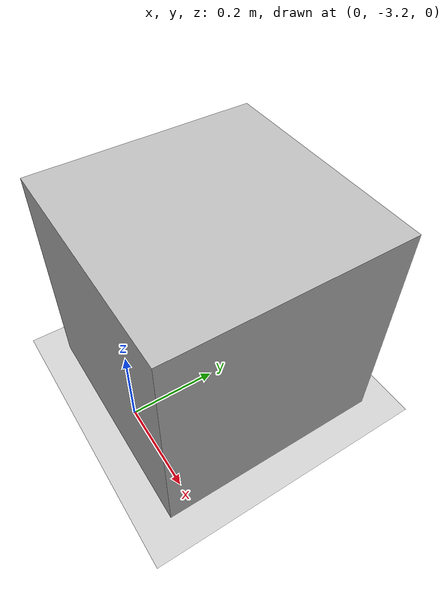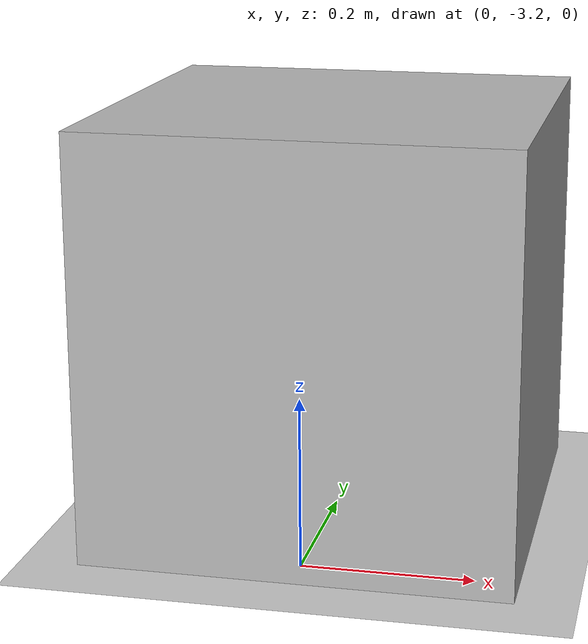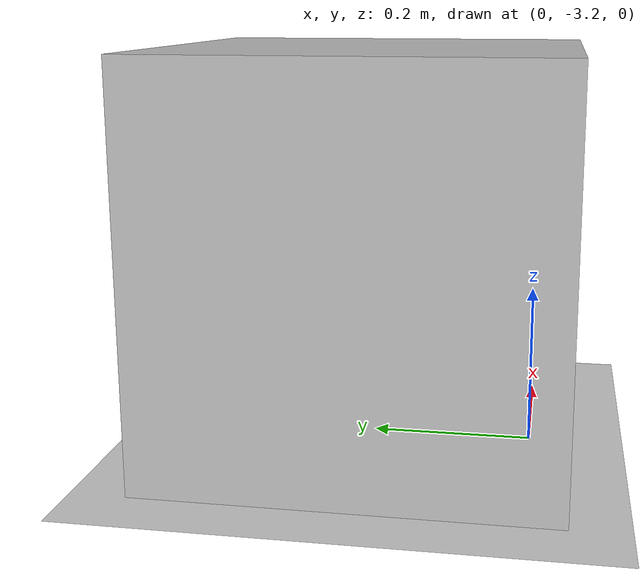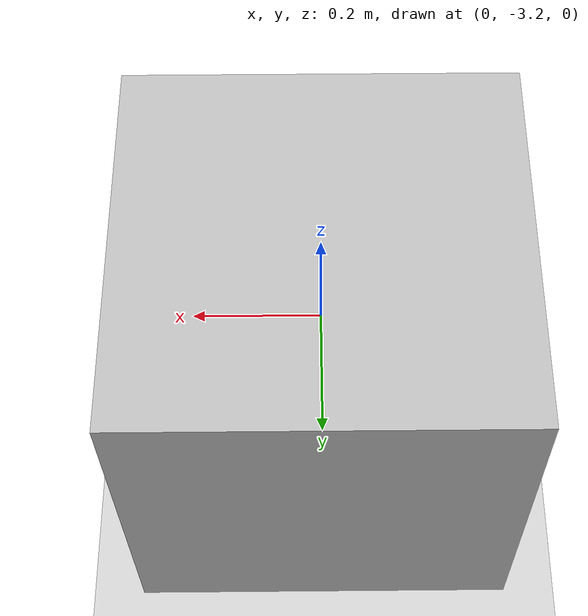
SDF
<sdf version="1.4">
<world name="default">
    <include>
        <uri>model://sun</uri>
    </include>

    <gravity>0 0 -9.8</gravity>

    <plugin name='gazebo_gym_env' filename='libgazebo_gym_env_plugin.so'/>

    <physics name="custom_physics_profile" type="ode" default="true">
      <max_step_size>0.001</max_step_size>
      <real_time_update_rate>-1</real_time_update_rate>
    </physics>

    <include>
        <uri>model://ground_plane</uri>
    </include>

    <model name='camera'>
      <link name='link'>
        <pose frame=''>0.0 0.0 0.0 0 0 0</pose>
        <inertial>
          <mass>0.1</mass>
          <inertia>
            <ixx>0.000166667</ixx>
            <iyy>0.000166667</iyy>
            <izz>0.000166667</izz>
            <ixy>0</ixy>
            <ixz>0</ixz>
            <iyz>0</iyz>
          </inertia>
          <pose frame=''>0 0 0 0 -0 0</pose>
        </inertial>
        <collision name='collision'>
          <geometry>
            <box>
              <size>0.5 0.5 0.5</size>
            </box>
          </geometry>
          <max_contacts>10</max_contacts>
          <surface>
            <contact>
              <ode/>
            </contact>
            <bounce/>
            <friction>
              <torsional>
                <ode/>
              </torsional>
              <ode/>
            </friction>
          </surface>
        </collision>
        <visual name='visual'>
          <geometry>
            <box>
              <size>0.5 0.5 0.5</size>
            </box>
          </geometry>
        </visual>
        <sensor name='camera' type='camera'>
      		<camera name='__default__'>
      			<horizontal_fov>1.047</horizontal_fov>
      			<image>
      				<width>1920</width>
      				<height>1080</height>
      			</image>
      			<clip>
      				<near>0.1</near>
      				<far>100</far>
      			</clip>
      			<distortion>
      				<k1>-0.25</k1>
      				<k2>0.12</k2>
      				<k3>0</k3>
      				<p1>-0.00028</p1>
      				<p2>-5e-05</p2>
      				<center>0.5 0.5</center>
      			</distortion>
      		</camera>
      		<plugin name="camera_controller" filename="libgazebo_ros_camera.so">
      			<alwaysOn>true</alwaysOn>
      			<updateRate>0.0</updateRate>
      			<cameraName>cartpole/camera</cameraName>
      			<imageTopicName>image_raw</imageTopicName>
      			<cameraInfoTopicName>camera_info</cameraInfoTopicName>
      			<frameName>camera_link</frameName>
      			<hackBaseline>0.07</hackBaseline>
      			<distortionK1>0.0</distortionK1>
      			<distortionK2>0.0</distortionK2>
      			<distortionK3>0.0</distortionK3>
      			<distortionT1>0.0</distortionT1>
      			<distortionT2>0.0</distortionT2>
      		</plugin>
      		<always_on>1</always_on>
      		<update_rate>30</update_rate>
      		<visualize>1</visualize>
        </sensor>
        <self_collide>0</self_collide>
        <enable_wind>0</enable_wind>
        <kinematic>0</kinematic>
      </link>
      <pose frame=''>0.0 -3.0 0.25 0 0 1.57</pose>
    </model>
</world>
</sdf>
